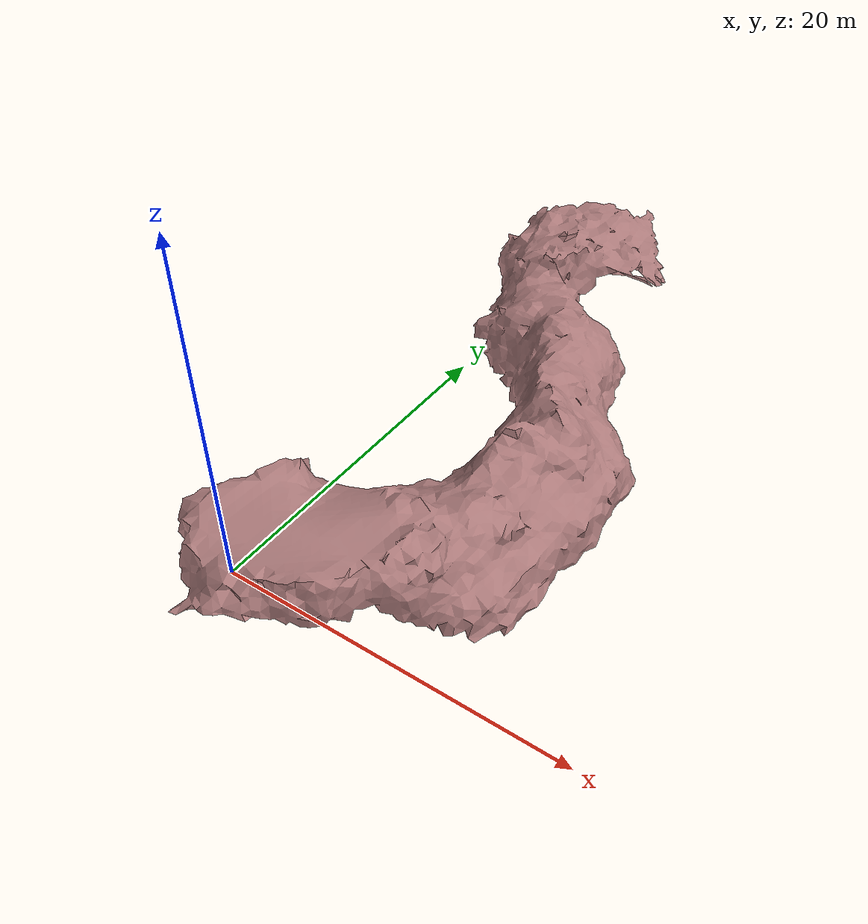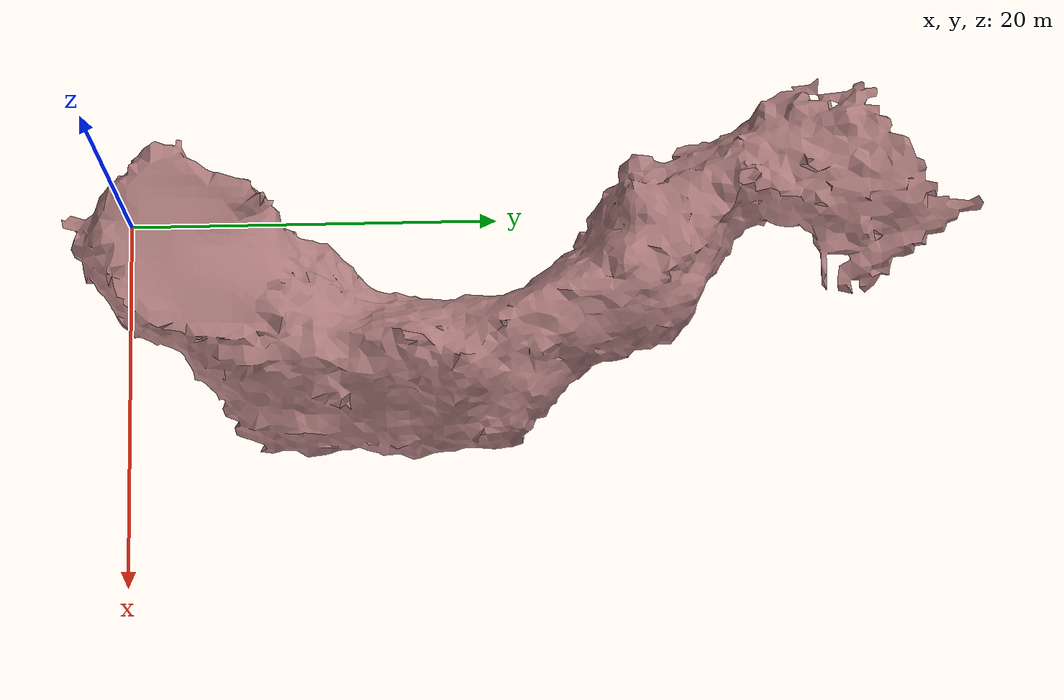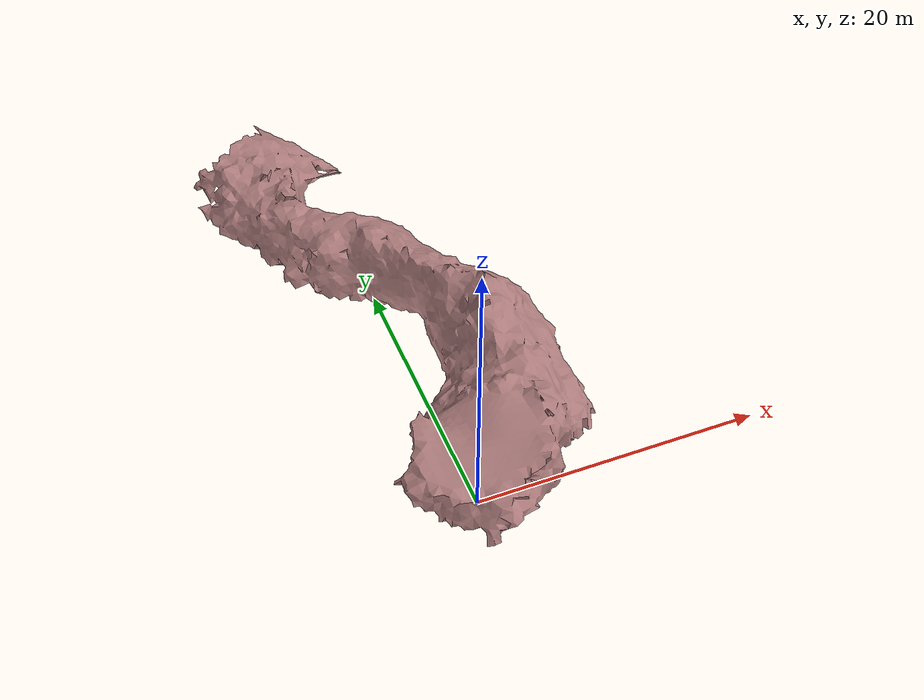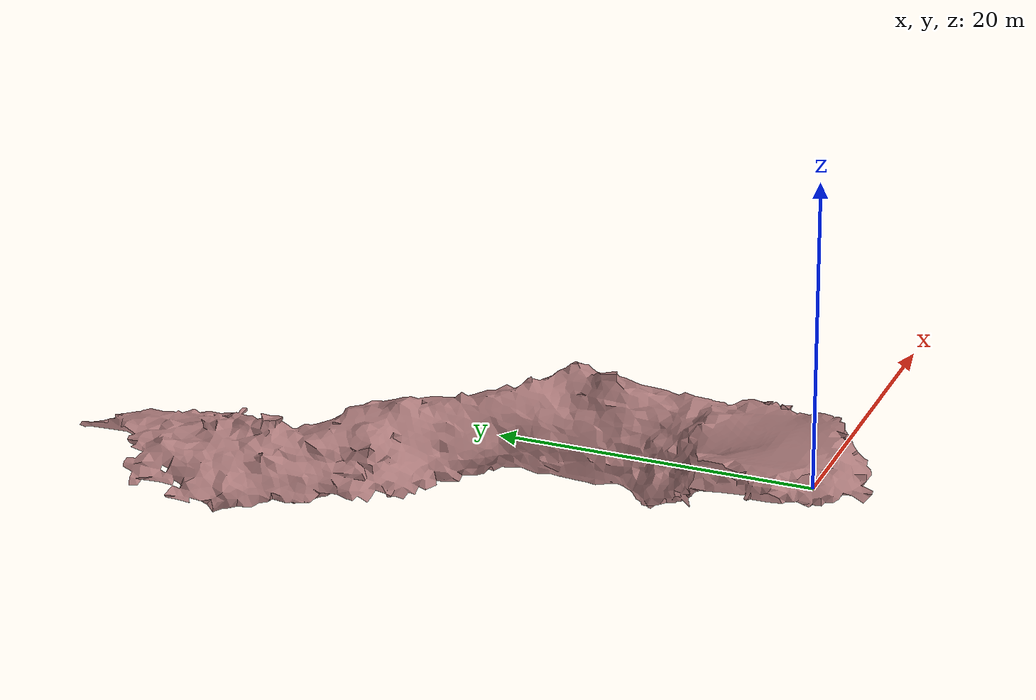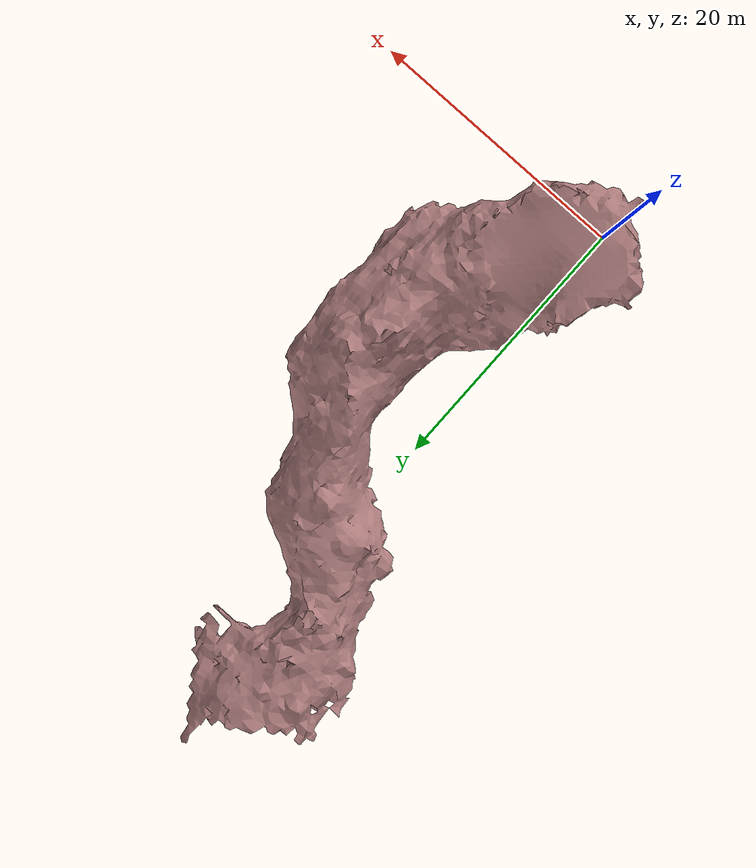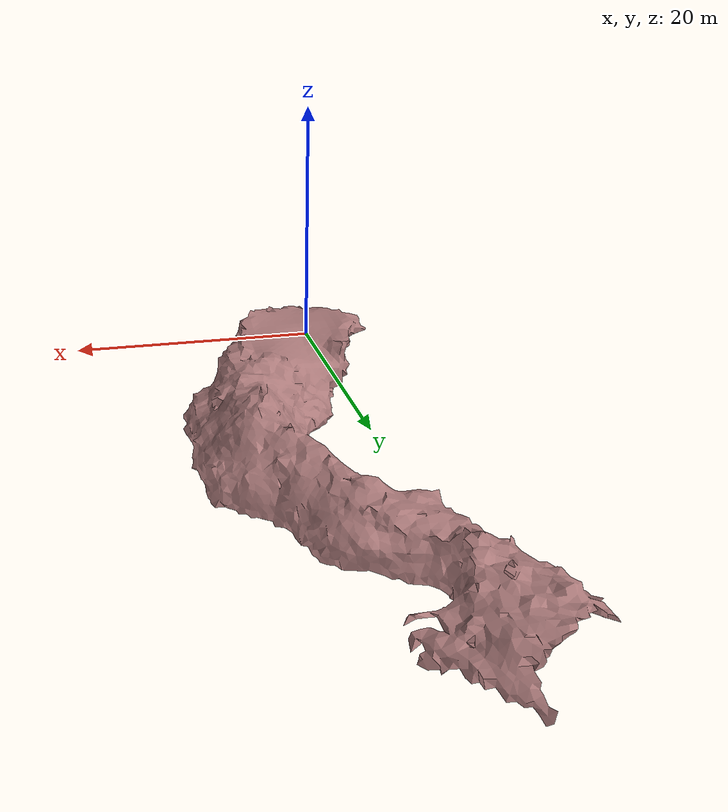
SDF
<?xml version="1.0" encoding="UTF-8" ?>
<sdf version="1.4">
  <world name="default">
    <scene>
      <background>0.1 0.1 0.1 1</background>
      <shadows>true</shadows>
    </scene>

    <physics type="ode">
      <gravity>0 0 -9.81</gravity>
      <ode>
        <solver>
          <type>quick</type>
          <iters>10</iters>
          <sor>1.3</sor>
        </solver>
        <constraints>
          <cfm>0.0</cfm>
          <erp>0.2</erp>
          <contact_max_correcting_vel>10</contact_max_correcting_vel>
          <contact_surface_layer>0.001</contact_surface_layer>
        </constraints>
      </ode>
      <max_step_size>0.001</max_step_size>
    </physics>

    <light type="directional" name="directional_light_1">
      <pose>0 20 20 0.1 0.1 0</pose>
      <diffuse>1 1 1 1</diffuse>
      <specular>1 1 1 1</specular>
      <attenuation>
        <range>300</range>
      </attenuation>
      <direction>0.1 0.1 -1</direction>
      <cast_shadows>false</cast_shadows>
    </light>

    <include>
      <uri>model://indian_tunnel</uri>
      <scale>0.01 0.01 0.01</scale>
    </include>

  </world>
</sdf>

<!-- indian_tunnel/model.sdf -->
<sdf version="1.6">
  <model name="indian_tunnel">
    <static>true</static>
    <link name="indian_tunnel_link">
      <pose>0 0 0 0 0 0</pose>
      <collision name="indian_tunnel_collision">
        <geometry>
          <mesh>
            <scale>0.5 0.5 0.5</scale>
            <uri>model://indian_tunnel/indian_tunnel.dae</uri>
          </mesh>
        </geometry>
      </collision>
      <visual name="indian_tunnel_visual">
        <geometry>
          <mesh>
            <scale>0.5 0.5 0.5</scale>
            <uri>model://indian_tunnel/indian_tunnel.dae</uri>
          </mesh>
        </geometry>
        <cast_shadows>false</cast_shadows>
        <material>
          <ambient>0.5 0.3 0.3 1</ambient>
          <diffuse>0.7 0.5 0.5 1</diffuse>
          <specular>0.7 0.5 0.5 1</specular>
          <emissive>0 0 0 1</emissive>
        </material>
      </visual>
    </link>
  </model>
</sdf>
